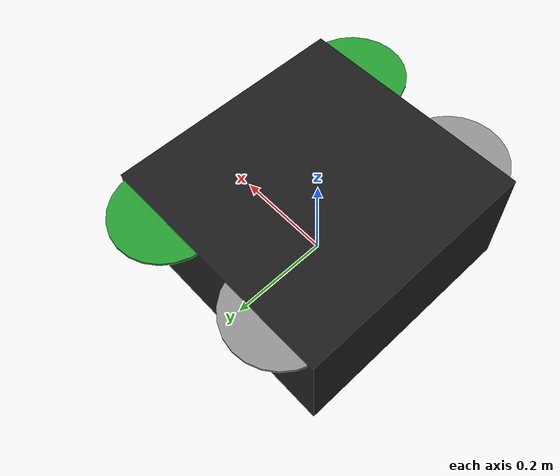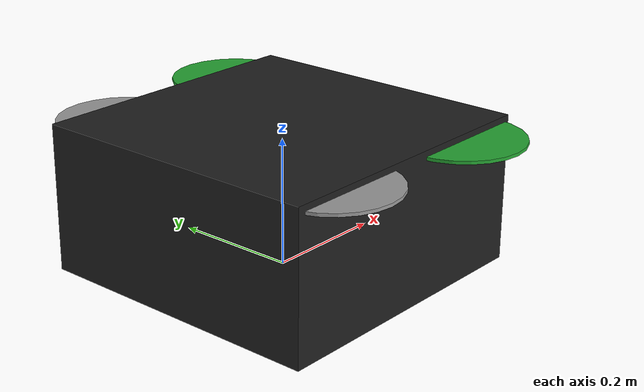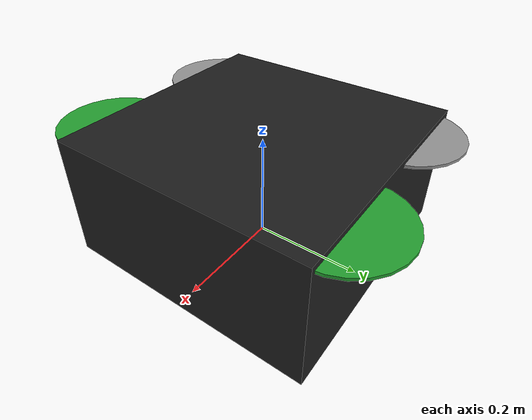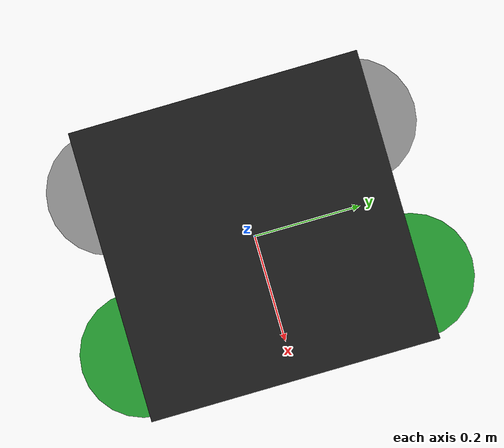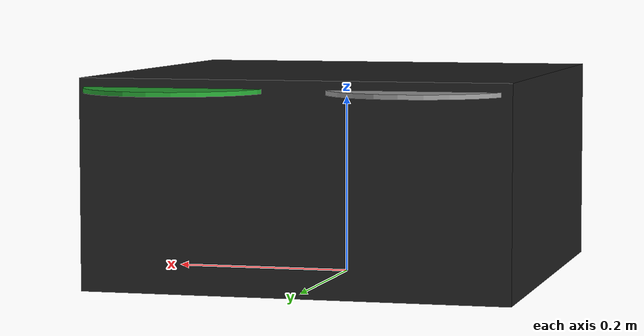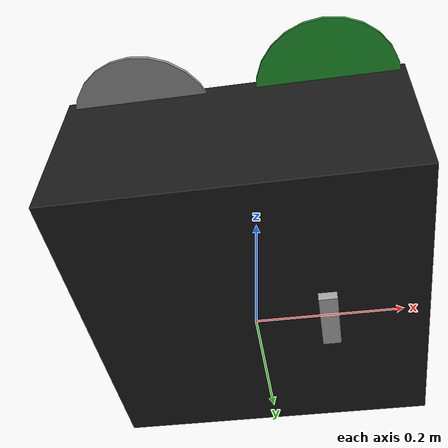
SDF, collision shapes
<?xml version="1.0" ?>
<sdf version='1.5'>
  <model name='iris_realsense'>
    <include>
      <uri>model://iris</uri>
    </include>

    <include>
      <uri>model://realsense_camera</uri>
      <pose>0.1 0 0 0 0 0</pose>
    </include>
    <joint name="realsense_camera_joint" type="revolute">
      <child>realsense_camera::link</child>
      <parent>iris::base_link</parent>
      <axis>
        <xyz>0 0 1</xyz>
        <limit>
          <upper>0</upper>
          <lower>0</lower>
        </limit>
      </axis>
    </joint>

  </model>
</sdf>

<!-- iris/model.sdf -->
<sdf version='1.5'>
  <model name='iris-1'>
    <pose>0 0 0.194923 0 0 0</pose>
    <link name='iris-1-base_link'>
      <velocity_decay>
        <linear>0.0</linear>
        <angular>0.0</angular>
      </velocity_decay>
      <inertial>
        <pose>0 0 0 0 0 0</pose>
        <mass>1.5</mass>
        <inertia>
          <ixx>0.008</ixx>
          <ixy>0</ixy>
          <ixz>0</ixz>
          <iyy>0.015</iyy>
          <iyz>0</iyz>
          <izz>0.017</izz>
        </inertia>
      </inertial>
      <collision name='iris-1-base_link_collision'>
        <pose>0 0 -0.08 0 0 0</pose>
        <geometry>
          <box>
            <size>0.47 0.47 0.23</size>
          </box>
        </geometry>
        <surface>
          <contact>
            <ode>
              <max_vel>100.0</max_vel>
              <min_depth>0.001</min_depth>
            </ode>
          </contact>
          <friction>
            <ode>
              <mu>100000.0</mu>
              <mu2>100000.0</mu2>
            </ode>
          </friction>
        </surface>
      </collision>
      <visual name='iris-1-base_link_visual'>
        <geometry>
          <mesh>
            <uri>model://formation/vehicle1/iris/meshes/iris.dae</uri>
          </mesh>
        </geometry>
        <material>
          <script>
            <name>Gazebo/Black</name>
          </script>
        </material>
      </visual>

      <visual name='iris-1-front_left_leg_visual'>
        <pose>0.123 0.22 -0.11 0 0 0</pose>
        <geometry>
          <cylinder>
            <radius>0.005</radius>
            <length>0.17</length>
          </cylinder>
        </geometry>
        <material>
          <script>
            <name>Gazebo/FlatBlack</name>
            <uri>file://media/materials/scripts/gazebo.material</uri>
          </script>
        </material>
      </visual>
      <visual name='iris-1-front_right_leg_visual'>
        <pose>0.123 -0.22 -0.11 0 0 0</pose>
        <geometry>
          <cylinder>
            <radius>0.005</radius>
            <length>0.17</length>
          </cylinder>
        </geometry>
        <material>
          <script>
            <name>Gazebo/FlatBlack</name>
            <uri>file://media/materials/scripts/gazebo.material</uri>
          </script>
        </material>
      </visual>
      <visual name='iris-1-rear_left_leg_visual'>
        <pose>-0.140 0.21 -0.11 0 0 0</pose>
        <geometry>
          <cylinder>
            <radius>0.005</radius>
            <length>0.17</length>
          </cylinder>
        </geometry>
        <material>
          <script>
            <name>Gazebo/FlatBlack</name>
            <uri>file://media/materials/scripts/gazebo.material</uri>
          </script>
        </material>
      </visual>
      <visual name='iris-1-rear_right_leg_visual'>
        <pose>-0.140 -0.21 -0.11 0 0 0</pose>
        <geometry>
          <cylinder>
            <radius>0.005</radius>
            <length>0.17</length>
          </cylinder>
        </geometry>
        <material>
          <script>
            <name>Gazebo/FlatBlack</name>
            <uri>file://media/materials/scripts/gazebo.material</uri>
          </script>
        </material>
      </visual>
    </link>
    <link name='iris-1/ground_truth/odometry_sensorgt_link'>
      <pose>0 0 0 0 -0 0</pose>
      <inertial>
        <pose>0 0 0 0 -0 0</pose>
        <mass>0.15</mass>
        <inertia>
          <ixx>0.0001</ixx>
          <ixy>0</ixy>
          <ixz>0</ixz>
          <iyy>0.0002</iyy>
          <iyz>0</iyz>
          <izz>0.0002</izz>
        </inertia>
      </inertial>
    </link>
    <joint name='iris-1/ground_truth/odometry_sensorgt_joint' type='revolute'>
      <child>iris-1/ground_truth/odometry_sensorgt_link</child>
      <parent>iris-1-base_link</parent>
      <axis>
        <xyz>0 0 1</xyz>
        <limit>
          <lower>0</lower>
          <upper>0</upper>
          <effort>0</effort>
          <velocity>0</velocity>
        </limit>
        <dynamics>
          <damping>1.0</damping>
        </dynamics>
        <use_parent_model_frame>1</use_parent_model_frame>
      </axis>
      <physics>
        <ode>
          <implicit_spring_damper>1</implicit_spring_damper>
        </ode>
      </physics>
    </joint>
    <link name='iris-1/imu_link'>
      <inertial>
        <pose>0 0 0 0 0 0</pose>
        <mass>0.15</mass>
        <inertia>
          <ixx>0.00001</ixx>
          <ixy>0</ixy>
          <ixz>0</ixz>
          <iyy>0.00002</iyy>
          <iyz>0</iyz>
          <izz>0.00002</izz>
        </inertia>
      </inertial>
      <sensor name="iris-1-imu_sensor" type="imu">
        <pose>0 0 0 3.141593 0 0</pose>
        <always_on>1</always_on>
        <update_rate>1000.0</update_rate>
      </sensor>
    </link>
    <joint name='iris-1/imu_joint' type='revolute'>
      <child>iris-1/imu_link</child>
      <parent>iris-1-base_link</parent>
      <axis>
        <xyz>0 0 1</xyz>
        <limit>
          <lower>0</lower>
          <upper>0</upper>
          <effort>0</effort>
          <velocity>0</velocity>
        </limit>
        <dynamics>
          <damping>1.0</damping>
        </dynamics>
        <use_parent_model_frame>1</use_parent_model_frame>
      </axis>
      <physics>
        <ode>
          <implicit_spring_damper>1</implicit_spring_damper>
        </ode>
      </physics>
    </joint>
    <link name='iris-1-rotor_0'>
      <pose>0.13 -0.22 0.023 0 -0 0</pose>
      <inertial>
        <pose>0 0 0 0 -0 0</pose>
        <mass>0.025</mass>
        <inertia>
          <ixx>9.75e-06</ixx>
          <ixy>0</ixy>
          <ixz>0</ixz>
          <iyy>0.000166704</iyy>
          <iyz>0</iyz>
          <izz>0.000167604</izz>
        </inertia>
      </inertial>
      <collision name='iris-1-rotor_0_collision'>
        <pose>0 0 0 0 -0 0</pose>
        <geometry>
          <cylinder>
            <length>0.005</length>
            <radius>0.1</radius>
          </cylinder>
        </geometry>
        <surface>
          <contact>
            <ode/>
          </contact>
          <friction>
            <ode/>
          </friction>
        </surface>
      </collision>
      <visual name='iris-1-rotor_0_visual'>
        <pose>0 0 0 0 -0 0</pose>
        <geometry>
          <mesh>
            <scale>1 1 1</scale>
            <uri>model://formation/vehicle1/iris/meshes/iris_prop_ccw.dae</uri>
          </mesh>
        </geometry>
        <material>
          <script>
            <name>Gazebo/Green</name>
            <uri>__default__</uri>
          </script>
        </material>
      </visual>
      <gravity>1</gravity>
      <velocity_decay/>
      <self_collide>0</self_collide>
    </link>
    <joint name='iris-1-rotor_0_joint' type='revolute'>
      <child>iris-1-rotor_0</child>
      <parent>iris-1-base_link</parent>
      <axis>
        <xyz>0 0 1</xyz>
        <limit>
          <lower>-1e+16</lower>
          <upper>1e+16</upper>
        </limit>
        <dynamics>
          <damping>0.004</damping>
        </dynamics>
        <use_parent_model_frame>1</use_parent_model_frame>
      </axis>
      <physics>
        <ode>
          <implicit_spring_damper>1</implicit_spring_damper>
        </ode>
      </physics>
    </joint>
    <link name='iris-1-rotor_1'>
      <pose>-0.13 0.2 0.023 0 -0 0</pose>
      <inertial>
        <pose>0 0 0 0 -0 0</pose>
        <mass>0.025</mass>
        <inertia>
          <ixx>9.75e-06</ixx>
          <ixy>0</ixy>
          <ixz>0</ixz>
          <iyy>0.000166704</iyy>
          <iyz>0</iyz>
          <izz>0.000167604</izz>
        </inertia>
      </inertial>
      <collision name='iris-1-rotor_1_collision'>
        <pose>0 0 0 0 -0 0</pose>
        <geometry>
          <cylinder>
            <length>0.005</length>
            <radius>0.1</radius>
          </cylinder>
        </geometry>
        <surface>
          <contact>
            <ode/>
          </contact>
          <friction>
            <ode/>
          </friction>
        </surface>
      </collision>
      <visual name='iris-1-rotor_1_visual'>
        <pose>0 0 0 0 -0 0</pose>
        <geometry>
          <mesh>
            <scale>1 1 1</scale>
            <uri>model://formation/vehicle1/iris/meshes/iris_prop_ccw.dae</uri>
          </mesh>
        </geometry>
        <material>
          <script>
            <name>Gazebo/Grey</name>
            <uri>__default__</uri>
          </script>
        </material>
      </visual>
      <gravity>1</gravity>
      <velocity_decay/>
      <self_collide>0</self_collide>
    </link>
    <joint name='iris-1-rotor_1_joint' type='revolute'>
      <child>iris-1-rotor_1</child>
      <parent>iris-1-base_link</parent>
      <axis>
        <xyz>0 0 1</xyz>
        <limit>
          <lower>-1e+16</lower>
          <upper>1e+16</upper>
        </limit>
        <dynamics>
          <damping>0.004</damping>
        </dynamics>
        <use_parent_model_frame>1</use_parent_model_frame>
      </axis>
      <physics>
        <ode>
          <implicit_spring_damper>1</implicit_spring_damper>
        </ode>
      </physics>
    </joint>
    <link name='iris-1-rotor_2'>
      <pose>0.13 0.22 0.023 0 -0 0</pose>
      <inertial>
        <pose>0 0 0 0 -0 0</pose>
        <mass>0.025</mass>
        <inertia>
          <ixx>9.75e-06</ixx>
          <ixy>0</ixy>
          <ixz>0</ixz>
          <iyy>0.000166704</iyy>
          <iyz>0</iyz>
          <izz>0.000167604</izz>
        </inertia>
      </inertial>
      <collision name='iris-1-rotor_2_collision'>
        <pose>0 0 0 0 -0 0</pose>
        <geometry>
          <cylinder>
            <length>0.005</length>
            <radius>0.1</radius>
          </cylinder>
        </geometry>
        <surface>
          <contact>
            <ode/>
          </contact>
          <friction>
            <ode/>
          </friction>
        </surface>
      </collision>
      <visual name='iris-1-rotor_2_visual'>
        <pose>0 0 0 0 -0 0</pose>
        <geometry>
          <mesh>
            <scale>1 1 1</scale>
            <uri>model://formation/vehicle1/iris/meshes/iris_prop_cw.dae</uri>
          </mesh>
        </geometry>
        <material>
          <script>
            <name>Gazebo/Green</name>
            <uri>__default__</uri>
          </script>
        </material>
      </visual>
      <gravity>1</gravity>
      <velocity_decay/>
      <self_collide>0</self_collide>
    </link>
    <joint name='iris-1-rotor_2_joint' type='revolute'>
      <child>iris-1-rotor_2</child>
      <parent>iris-1-base_link</parent>
      <axis>
        <xyz>0 0 1</xyz>
        <limit>
          <lower>-1e+16</lower>
          <upper>1e+16</upper>
        </limit>
        <dynamics>
          <damping>0.004</damping>
        </dynamics>
        <use_parent_model_frame>1</use_parent_model_frame>
      </axis>
      <physics>
        <ode>
          <implicit_spring_damper>1</implicit_spring_damper>
        </ode>
      </physics>
    </joint>
    <link name='iris-1-rotor_3'>
      <pose>-0.13 -0.2 0.023 0 -0 0</pose>
      <inertial>
        <pose>0 0 0 0 -0 0</pose>
        <mass>0.025</mass>
        <inertia>
          <ixx>9.75e-06</ixx>
          <ixy>0</ixy>
          <ixz>0</ixz>
          <iyy>0.000166704</iyy>
          <iyz>0</iyz>
          <izz>0.000167604</izz>
        </inertia>
      </inertial>
      <collision name='iris-1-rotor_3_collision'>
        <pose>0 0 0 0 -0 0</pose>
        <geometry>
          <cylinder>
            <length>0.005</length>
            <radius>0.1</radius>
          </cylinder>
        </geometry>
        <surface>
          <contact>
            <ode/>
          </contact>
          <friction>
            <ode/>
          </friction>
        </surface>
      </collision>
      <visual name='iris-1-rotor_3_visual'>
        <pose>0 0 0 0 -0 0</pose>
        <geometry>
          <mesh>
            <scale>1 1 1</scale>
            <uri>model://formation/vehicle1/iris/meshes/iris_prop_cw.dae</uri>
          </mesh>
        </geometry>
        <material>
          <script>
            <name>Gazebo/Grey</name>
            <uri>__default__</uri>
          </script>
        </material>
      </visual>
      <gravity>1</gravity>
      <velocity_decay/>
      <self_collide>0</self_collide>
    </link>
    <joint name='iris-1-rotor_3_joint' type='revolute'>
      <child>iris-1-rotor_3</child>
      <parent>iris-1-base_link</parent>
      <axis>
        <xyz>0 0 1</xyz>
        <limit>
          <lower>-1e+16</lower>
          <upper>1e+16</upper>
        </limit>
        <dynamics>
          <damping>0.004</damping>
        </dynamics>
        <use_parent_model_frame>1</use_parent_model_frame>
      </axis>
      <physics>
        <ode>
          <implicit_spring_damper>1</implicit_spring_damper>
        </ode>
      </physics>
    </joint>
    <static>0</static>
  </model>
</sdf>

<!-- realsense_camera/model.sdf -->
<sdf version="1.6">
  <model name="realsense_camera">
    <link name="camera_link">
      <inertial>
        <mass>0.0564</mass>
        <inertia>
          <ixx>4.1e-05</ixx>
          <ixy>0</ixy>
          <ixz>0</ixz>
          <iyy>5.9e-06</iyy>
          <iyz>0</iyz>
          <izz>5.9e-06</izz>
        </inertia>
      </inertial>
      <self_collide>0</self_collide>
      <kinematic>0</kinematic>
      <gravity>1</gravity>
      <visual name="visual">
        <geometry>
         <mesh>
            <uri>model://realsense_camera/meshes/realsense_d435.stl</uri>
          </mesh>
        </geometry>
      </visual>
      <collision name='collision'>
        <pose>0 0 0 0 0 0</pose>
        <geometry>
          <box>
            <size>0.02505 0.090 0.025</size>
          </box>
        </geometry>
        <surface>
          <friction>
            <ode>
              <mu>1</mu>
              <mu2>1</mu2>
              <fdir1>0 0 0</fdir1>
              <slip1>0</slip1>
              <slip2>0</slip2>
            </ode>
          </friction>
          <bounce>
            <restitution_coefficient>0</restitution_coefficient>
            <threshold>1e+06</threshold>
          </bounce>
          <contact>
            <collide_without_contact>0</collide_without_contact>
            <collide_without_contact_bitmask>1</collide_without_contact_bitmask>
            <collide_bitmask>1</collide_bitmask>
            <ode>
              <soft_cfm>0</soft_cfm>
              <soft_erp>0.2</soft_erp>
              <kp>1e+13</kp>
              <kd>1</kd>
              <max_vel>0.01</max_vel>
              <min_depth>0</min_depth>
            </ode>
            <bullet>
              <split_impulse>1</split_impulse>
              <split_impulse_penetration_threshold>-0.01</split_impulse_penetration_threshold>
              <soft_cfm>0</soft_cfm>
              <soft_erp>0.2</soft_erp>
              <kp>1e+13</kp>
              <kd>1</kd>
            </bullet>
          </contact>
        </surface>
      </collision>
    </link>

    <link name="camera_color_frame">
      <pose>0.0325 0 0 3.14 -1.57 1.57</pose>
      <inertial>
        <pose frame=''>0 0 0 0 -0 0</pose>
        <mass>0.0015</mass>
        <inertia>
          <ixx>1e-06</ixx>
          <ixy>0</ixy>
          <ixz>0</ixz>
          <iyy>1e-06</iyy>
          <iyz>0</iyz>
          <izz>1e-06</izz>
        </inertia>
      </inertial>
      <sensor name="color" type="camera">
        <camera name="color">
          <horizontal_fov>1.571</horizontal_fov>
          <image>
            <width>640</width>
            <height>480</height>
            <format>RGB_INT8</format>
          </image>
          <clip>
            <near>0.1</near>
            <far>100</far>
          </clip>
          <noise>
            <type>gaussian</type>
            <mean>0.0</mean>
            <stddev>0.007</stddev>
          </noise>
        </camera>
        <always_on>1</always_on>
        <update_rate>30</update_rate>
        <visualize>1</visualize>
      </sensor>
    </link>
    <joint name='camera_color_joint' type='revolute'>
      <child>camera_color_frame</child>
      <parent>camera_link</parent>
      <axis>
        <xyz>1 0 0</xyz>
        <limit>
          <lower>0</lower>
          <upper>0</upper>
          <effort>0</effort>
          <velocity>0</velocity>
        </limit>
        <dynamics>
          <spring_reference>0</spring_reference>
          <spring_stiffness>0</spring_stiffness>
        </dynamics>
        <use_parent_model_frame>1</use_parent_model_frame>
      </axis>
    </joint>

    <link name="camera_ired1_frame">
      <pose>0.02 0 0 3.14 -1.57 1.57</pose>
      <inertial>
        <pose frame=''>0 0 0 0 -0 0</pose>
        <mass>0.0015</mass>
        <inertia>
          <ixx>1e-06</ixx>
          <ixy>0</ixy>
          <ixz>0</ixz>
          <iyy>1e-06</iyy>
          <iyz>0</iyz>
          <izz>1e-06</izz>
        </inertia>
      </inertial>
      <sensor name="ired1" type="camera">
        <camera name="ired1">
          <horizontal_fov>1.571</horizontal_fov>
          <image>
            <width>640</width>
            <height>480</height>
            <format>L_INT8</format>
          </image>
          <clip>
            <near>0.1</near>
            <far>100</far>
          </clip>
          <noise>
            <type>gaussian</type>
            <mean>0.0</mean>
            <stddev>0.007</stddev>
          </noise>
        </camera>
        <always_on>1</always_on>
        <update_rate>30</update_rate>
        <visualize>0</visualize>
      </sensor>
    </link>
    <joint name='camera_ired1_joint' type='revolute'>
      <child>camera_ired1_frame</child>
      <parent>camera_link</parent>
      <axis>
        <xyz>1 0 0</xyz>
        <limit>
          <lower>0</lower>
          <upper>0</upper>
          <effort>0</effort>
          <velocity>0</velocity>
        </limit>
        <dynamics>
          <spring_reference>0</spring_reference>
          <spring_stiffness>0</spring_stiffness>
        </dynamics>
        <use_parent_model_frame>1</use_parent_model_frame>
      </axis>
    </joint>

    <link name="camera_ired2_frame">
      <pose>-0.03 0 0 3.14 -1.57 1.57</pose>
      <inertial>
        <pose frame=''>0 0 0 0 -0 0</pose>
        <mass>0.0015</mass>
        <inertia>
          <ixx>1e-06</ixx>
          <ixy>0</ixy>
          <ixz>0</ixz>
          <iyy>1e-06</iyy>
          <iyz>0</iyz>
          <izz>1e-06</izz>
        </inertia>
      </inertial>
      <sensor name="ired2" type="camera">
        <camera name="ired2">
          <horizontal_fov>1.571</horizontal_fov>
          <image>
            <width>640</width>
            <height>480</height>
            <format>L_INT8</format>
          </image>
          <clip>
            <near>0.1</near>
            <far>100</far>
          </clip>
          <noise>
            <type>gaussian</type>
            <mean>0.0</mean>
            <stddev>0.007</stddev>
          </noise>
        </camera>
        <always_on>1</always_on>
        <update_rate>30</update_rate>
        <visualize>0</visualize>
      </sensor>
    </link>
    <joint name='camera_ired2_joint' type='revolute'>
      <child>camera_ired2_frame</child>
      <parent>camera_link</parent>
      <axis>
        <xyz>1 0 0</xyz>
        <limit>
          <lower>0</lower>
          <upper>0</upper>
          <effort>0</effort>
          <velocity>0</velocity>
        </limit>
        <dynamics>
          <spring_reference>0</spring_reference>
          <spring_stiffness>0</spring_stiffness>
        </dynamics>
        <use_parent_model_frame>1</use_parent_model_frame>
      </axis>
    </joint>

    <link name="camera_depth_frame">
      <pose>0.0325 0 0 3.14 -1.57 1.57</pose>
      <inertial>
        <pose frame=''>0 0 0 0 -0 0</pose>
        <mass>0.0015</mass>
        <inertia>
          <ixx>1e-06</ixx>
          <ixy>0</ixy>
          <ixz>0</ixz>
          <iyy>1e-06</iyy>
          <iyz>0</iyz>
          <izz>1e-06</izz>
        </inertia>
      </inertial>
      <sensor name="depth" type="depth">
        <camera name="depth">
          <horizontal_fov>1.571</horizontal_fov>
          <image>
            <width>640</width>
            <height>480</height>
          </image>
          <clip>
            <near>0.1</near>
            <far>100</far>
          </clip>
          <noise>
            <type>gaussian</type>
            <mean>0.0</mean>
            <stddev>0.007</stddev>
          </noise>
        </camera>
        <always_on>1</always_on>
        <update_rate>30</update_rate>
        <visualize>0</visualize>

      </sensor>
    </link>
    <joint name='camera_depth_joint' type='revolute'>
      <child>camera_depth_frame</child>
      <parent>camera_link</parent>
      <axis>
        <xyz>1 0 0</xyz>
        <limit>
          <lower>0</lower>
          <upper>0</upper>
          <effort>0</effort>
          <velocity>0</velocity>
        </limit>
        <dynamics>
          <spring_reference>0</spring_reference>
          <spring_stiffness>0</spring_stiffness>
        </dynamics>
        <use_parent_model_frame>1</use_parent_model_frame>
      </axis>
    </joint>

    <plugin name="d435i" filename="librealsense_gazebo_plugin.so">
       <depthUpdateRate>30.0</depthUpdateRate>
       <colorUpdateRate>30.0</colorUpdateRate>
       <infraredUpdateRate>15.0</infraredUpdateRate>
       <depthTopicName>depth/image_raw</depthTopicName>
       <depthCameraInfoTopicName>depth/camera_info</depthCameraInfoTopicName>
       <colorTopicName>color/image_raw</colorTopicName>
       <colorCameraInfoTopicName>color/camera_info</colorCameraInfoTopicName>
       <infrared1TopicName>infra1/image_raw</infrared1TopicName>
       <infrared1CameraInfoTopicName>infra1/camera_info</infrared1CameraInfoTopicName>
       <infrared2TopicName>infra2/image_raw</infrared2TopicName>
       <infrared2CameraInfoTopicName>infra2/camera_info</infrared2CameraInfoTopicName>
       <colorOpticalframeName>camera_color_frame</colorOpticalframeName>
       <depthOpticalframeName>camera_depth_frame</depthOpticalframeName>
       <infrared1OpticalframeName>camera_ired1_frame</infrared1OpticalframeName>
       <infrared2OpticalframeName>camera_ired2_frame</infrared2OpticalframeName>
       <rangeMinDepth>0.2</rangeMinDepth>
       <rangeMaxDepth>10.0</rangeMaxDepth>
       <pointCloud>false</pointCloud>
       <pointCloudTopicName>depth/color/points</pointCloudTopicName>
       <pointCloudCutoff>0.25</pointCloudCutoff>
       <pointCloudCutoffMax>9.0</pointCloudCutoffMax>
     </plugin>

  </model>
</sdf>
